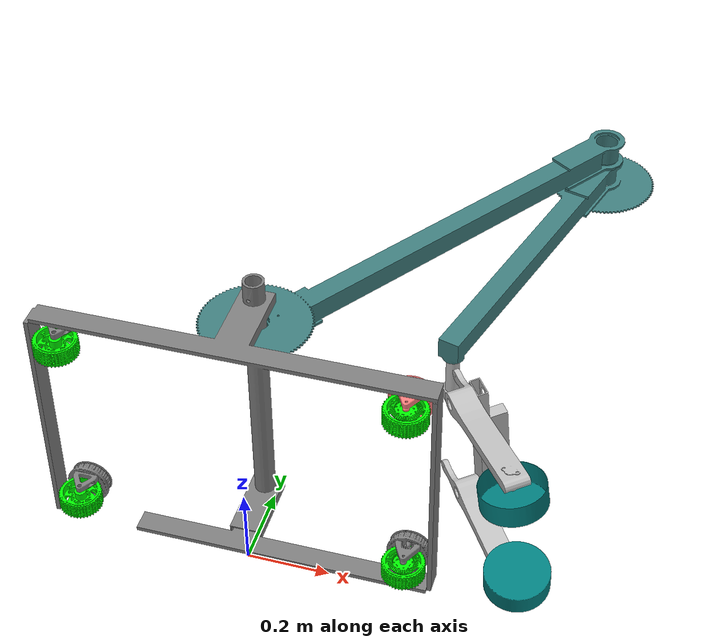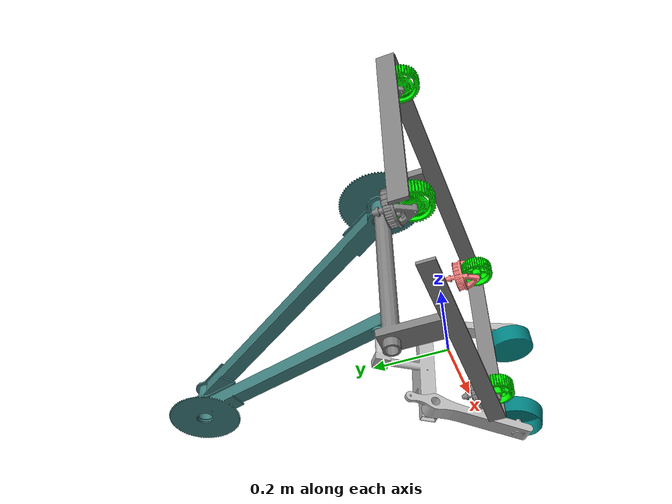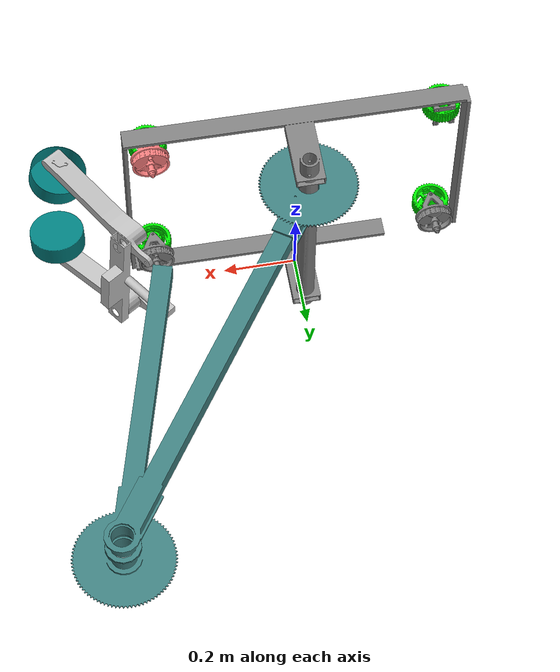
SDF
<?xml version="1.0" encoding="utf-8"?>
<sdf version="1.5">
  <model name="SimSwerveBot3">
    <pose>0 0 0.372289921204834 0 0 0</pose>

    <link name="Body">
      <gravity>1</gravity>
      <self_collide>0</self_collide>
      <pose>0.0103185969497103 0.0270555915724389 0.00229909099591104 0 0 0</pose>
      <must_be_base_link>1</must_be_base_link>
      <velocity_decay>
        <linear>0.0</linear>
        <angular>0.0</angular>
      </velocity_decay>
      <inertial>
        <mass>150</mass>
        <pose>0 0 0 0 0 0</pose>

      </inertial>
      <collision name="Body_collision">
        <pose>-0.466812853283889 -0.02705559157244 -0.00301802987182291 0 0 0</pose>
        <geometry>
          <mesh>
            <scale>1 1 1</scale>
            <uri>model://SimSwerveBot3/meshes/Body_col.STL</uri>
          </mesh>
        </geometry>
        <surface>
          <contact>
            <ode />
          </contact>
          <friction>
            <ode>
              <mu>1</mu>
              <mu2>1</mu2>
            </ode>
          </friction>
        </surface>
      </collision>
      <visual name="Body_visual">
        <pose>-0.466812853283889 -0.02705559157244 -0.00301802987182291 0 0 0</pose>
        <material>
          <ambient>0.501960784313725 0.501960784313725 0.501960784313725 1</ambient>
          <diffuse>0.501960784313725 0.501960784313725 0.501960784313725 1</diffuse>
        </material>
        <geometry>
          <mesh>
            <scale>1 1 1</scale>
            <uri>model://SimSwerveBot3/meshes/Body.STL</uri>
          </mesh>
        </geometry>
      </visual>
    </link>

    <link name="FRdrive">
      <gravity>1</gravity>
      <self_collide>0</self_collide>
      <pose>0.363496387518542 0.00308940755423762 0.210899192814309 0 0 0</pose>
      <must_be_base_link>0</must_be_base_link>
       <velocity_decay>
        <linear>0</linear>
        <angular>0.01</angular>
      </velocity_decay>
      <inertial>
        <mass>1</mass>
        <pose>0 0 0 0 0 0</pose>
      </inertial>
      <visual name="FRdrive_visual">
        <pose>-0.81999064385272 -0.00308940755423872 -0.211618131690221 0 0 0</pose>
        <material>
          <ambient>1 0.501960784313725 0.501960784313725 1</ambient>
          <diffuse>1 0.501960784313725 0.501960784313725 1</diffuse>
        </material>
        <geometry>
          <mesh>
            <scale>1 1 1</scale>
            <uri>model://SimSwerveBot3/meshes/FRdrive.STL</uri>
          </mesh>
        </geometry>
      </visual>
    </link>
    <joint name="Body-FRdrive" type="revolute">
      <parent>Body</parent>
      <child>FRdrive</child>
      <pose>0.0270286124814588 0 0.027225807185676 0 0 4.71238898038469</pose>
      <axis>
        <xyz>-1 0 0</xyz>
        <dynamics>
          <damping>1</damping>
          <friction>1</friction>
        </dynamics>
      </axis>
    </joint>
    <link name="FRwheel">
      <gravity>1</gravity>
      <self_collide>0</self_collide>
      <pose>0.390524894652224 -0.045440778296 0.239779131380291 0 0 0</pose>
      <must_be_base_link>0</must_be_base_link>
      <velocity_decay>
        <linear>0</linear>
        <angular>0.002</angular>
      </velocity_decay>
      <inertial>
        <mass>1</mass>
        <pose>0 0 0 0 0 0</pose>
      </inertial>
      <collision name="FRwheel_collision">
        <pose>-0.847019150986402 0.0454407782959989 -0.240498070256203 0 0 0</pose>
        <geometry>
          <mesh>
            <scale>1 1 1</scale>
            <uri>model://SimSwerveBot3/meshes/FRwheel_col.STL</uri>
          </mesh>
        </geometry>
        <surface>
          <contact>
             <ode>
              <max_vel>0.1</max_vel>
              <soft_cfm>0.8</soft_cfm>
              <soft_erp>0.8</soft_erp>
              <kd>25</kd>
              <kp>1e6</kp>
              <min_depth>0.0001</min_depth>
            </ode>
          </contact>
          <friction>
            <ode>
              <mu>1</mu>
              <mu2>1</mu2>
            </ode>
          </friction>
        </surface>
      </collision>
      <visual name="FRwheel_visual">
        <pose>-0.847019150986402 0.0454407782959989 -0.240498070256203 0 0 0</pose>
        <material>
          <ambient>0 1 0 1</ambient>
          <diffuse>0 1 0 1</diffuse>
        </material>
        <geometry>
          <mesh>
            <scale>1 1 1</scale>
            <uri>model://SimSwerveBot3/meshes/FRwheel.STL</uri>
          </mesh>
        </geometry>
      </visual>
    </link>
    <joint name="FRdrive-FRwheel" type="revolute">
      <parent>FRdrive</parent>
      <child>FRwheel</child>
      <pose>1.25638072463463E-05 0.00011429545755863 -9.46325306450113E-08 0 4.7199209919262 6.28318530717959</pose>
      <axis>
        <xyz>-1 0 0</xyz>
        <dynamics>
          <damping>1</damping>
          <friction>1</friction>
        </dynamics>
      </axis>
    </joint>
    <link name="FLdrive">
      <gravity>1</gravity>
      <self_collide>0</self_collide>
      <pose>0.390516175212258 -0.00398782218945136 -0.236504732283261 0 0 0</pose>
      <must_be_base_link>0</must_be_base_link>
      <velocity_decay>
        <linear>0</linear>
        <angular>0.01</angular>
      </velocity_decay>
      <inertial>
        <mass>1</mass>
        <pose>0 0 0 0 0 0</pose>
      </inertial>
      <visual name="FLdrive_visual">
        <pose>-0.847010431546437 0.00398782218945027 0.235785793407349 0 0 0</pose>
        <material>
          <ambient>0.501960784313725 0.501960784313725 0.501960784313725 1</ambient>
          <diffuse>0.501960784313725 0.501960784313725 0.501960784313725 1</diffuse>
        </material>
        <geometry>
          <mesh>
            <scale>1 1 1</scale>
            <uri>model://SimSwerveBot3/meshes/FLdrive.STL</uri>
          </mesh>
        </geometry>
      </visual>
    </link>
    <joint name="Body-FLdrive" type="revolute">
      <parent>Body</parent>
      <child>FLdrive</child>
      <pose>8.82478774166806E-06 5.20417042793042E-18 -0.00162026771675042 0 6.28318530717959 4.71238898038469</pose>
      <axis>
        <xyz>-1 0 0</xyz>
        <dynamics>
          <damping>1</damping>
          <friction>1</friction>
        </dynamics>
      </axis>
    </joint>
    <link name="FLwheel">
      <gravity>1</gravity>
      <self_collide>0</self_collide>
      <pose>0.390549941149665 -0.0454363391768118 -0.236470756117954 0 0 0</pose>
      <must_be_base_link>0</must_be_base_link>
      <velocity_decay>
        <linear>0</linear>
        <angular>0.002</angular>
      </velocity_decay>
      <inertial>
        <mass>0.123981363237525</mass>
        <pose>0 0 0 0 0 0</pose>
      </inertial>
      <collision name="FLwheel_collision">
        <pose>-0.847044197483843 0.0454363391768107 0.235751817242042 0 0 0</pose>
        <geometry>
          <mesh>
            <scale>1 1 1</scale>
            <uri>model://SimSwerveBot3/meshes/FLwheel_col.STL</uri>
          </mesh>
        </geometry>
        <surface>
          <contact>
             <ode>
              <max_vel>0.1</max_vel>
              <soft_cfm>0.8</soft_cfm>
              <soft_erp>0.8</soft_erp>
              <kd>25</kd>
              <kp>1e6</kp>
              <min_depth>0.001</min_depth>
            </ode>
          </contact>
          <friction>
            <ode>
              <mu>1</mu>
              <mu2>1</mu2>
            </ode>
          </friction>
        </surface>
      </collision>
      <visual name="FLwheel_visual">
        <pose>-0.847044197483843 0.0454363391768107 0.235751817242042 0 0 0</pose>
        <material>
          <ambient>0 1 0 1</ambient>
          <diffuse>0 1 0 1</diffuse>
        </material>
        <geometry>
          <mesh>
            <scale>1 1 1</scale>
            <uri>model://SimSwerveBot3/meshes/FLwheel.STL</uri>
          </mesh>
        </geometry>
      </visual>
    </link>
    <joint name="FLdrive-FLwheel" type="revolute">
      <parent>FLdrive</parent>
      <child>FLwheel</child>
      <pose>-3.39534051447821E-05 0.000109856338368929 -1.84997501873063E-07 0 4.71783749638594 5.39814581483388E-16</pose>
      <axis>
        <xyz>-1 0 0</xyz>
        <dynamics>
          <damping>1</damping>
          <friction>1</friction>
        </dynamics>
      </axis>
    </joint>
    <link name="BRdrive">
      <gravity>1</gravity>
      <self_collide>0</self_collide>
      <pose>-0.389820351374971 -0.0252568719347456 0.23794658223208 0 0 0</pose>
      <must_be_base_link>0</must_be_base_link>
      <velocity_decay>
        <linear>0</linear>
        <angular>0.01</angular>
      </velocity_decay>
      <inertial>
        <mass>1</mass>
        <pose>0 0 0 0 0 0</pose>
      </inertial>
      <visual name="BRdrive_visual">
        <pose>-0.0666739049592076 0.0252568719347445 -0.238665521107992 0 0 0</pose>
        <material>
          <ambient>0.501960784313725 0.501960784313725 0.501960784313725 1</ambient>
          <diffuse>0.501960784313725 0.501960784313725 0.501960784313725 1</diffuse>
        </material>
        <geometry>
          <mesh>
            <scale>1 1 1</scale>
            <uri>model://SimSwerveBot3/meshes/BRdrive.STL</uri>
          </mesh>
        </geometry>
      </visual>
    </link>
    <joint name="Body-BRdrive" type="revolute">
      <parent>Body</parent>
      <child>BRdrive</child>
      <pose>1.09504079234823E-06 0 0.000178417767905031 0 6.28318530717959 4.71238898038469</pose>
      <axis>
        <xyz>-1 0 0</xyz>
        <dynamics>
          <damping>1</damping>
          <friction>1</friction>
        </dynamics>
      </axis>
    </joint>
    <link name="BRwheel">
      <gravity>1</gravity>
      <self_collide>0</self_collide>
      <pose>-0.38981675512866 -0.0454407782968198 0.236470870684926 0 0 0</pose>
      <must_be_base_link>0</must_be_base_link>
      <velocity_decay>
        <linear>0</linear>
        <angular>0.002</angular>
      </velocity_decay>
      <inertial>
        <mass>1</mass>
        <pose>0 0 0 0 0 0</pose>
      </inertial>
      <collision name="BRwheel_collision">
        <pose>-0.066677501205518 0.0454407782968187 -0.237189809560838 0 0 0</pose>
        <geometry>
          <mesh>
            <scale>1 1 1</scale>
            <uri>model://SimSwerveBot3/meshes/BRwheel_col.STL</uri>
          </mesh>
        </geometry>
        <surface>
          <contact>
            <ode>
              <max_vel>0.1</max_vel>
              <soft_cfm>0.8</soft_cfm>
              <soft_erp>0.8</soft_erp>
              <kd>25</kd>
              <kp>1e6</kp>
              <min_depth>0.0001</min_depth>
            </ode>
          </contact>
          <friction>
            <ode>
              <mu>1</mu>
              <mu2>1</mu2>
            </ode>
          </friction>
        </surface>
      </collision>
      <visual name="BRwheel_visual">
        <pose>-0.066677501205518 0.0454407782968187 -0.237189809560838 0 0 0</pose>
        <material>
          <ambient>0 1 0 1</ambient>
          <diffuse>0 1 0 1</diffuse>
        </material>
        <geometry>
          <mesh>
            <scale>1 1 1</scale>
            <uri>model://SimSwerveBot3/meshes/BRwheel.STL</uri>
          </mesh>
        </geometry>
      </visual>
    </link>
    <joint name="BRdrive-BRwheel" type="revolute">
      <parent>BRdrive</parent>
      <child>BRwheel</child>
      <pose>-1.25639304105613E-05 0.000114295458376691 7.6434905293965E-08 0 1.56471272398399 3.14159265358979</pose>
      <axis>
        <xyz>1 0 0</xyz>
        <dynamics>
          <damping>1</damping>
          <friction>1</friction>
        </dynamics>
      </axis>
    </joint>
    <link name="BLdrive">
      <gravity>1</gravity>
      <self_collide>0</self_collide>
      <pose>-0.389831464443077 -0.00398782097182753 -0.239745247576255 0 0 0</pose>
      <must_be_base_link>0</must_be_base_link>
      <velocity_decay>
        <linear>0</linear>
        <angular>0.01</angular>
      </velocity_decay>
      <inertial>
        <mass>1</mass>
        <pose>0 0 0 0 0 0</pose>
      </inertial>
      <visual name="BLdrive_visual">
        <pose>-0.0666627918911016 0.00398782097182643 0.239026308700343 0 0 0</pose>
        <material>
          <ambient>0.501960784313725 0.501960784313725 0.501960784313725 1</ambient>
          <diffuse>0.501960784313725 0.501960784313725 0.501960784313725 1</diffuse>
        </material>
        <geometry>
          <mesh>
            <scale>1 1 1</scale>
            <uri>model://SimSwerveBot3/meshes/BLdrive.STL</uri>
          </mesh>
        </geometry>
      </visual>
    </link>
    <joint name="Body-BLdrive" type="revolute">
      <parent>Body</parent>
      <child>BLdrive</child>
      <pose>-1.25638072462075E-05 0.00011429545755838 9.46325307560336E-08 0 1.56326431525339 3.14159265358979</pose>
      <axis>
        <xyz>0 -1 0</xyz>
        <dynamics>
          <damping>1</damping>
          <friction>1</friction>
        </dynamics>
      </axis>
    </joint>
    <link name="BLwheel">
      <gravity>1</gravity>
      <self_collide>0</self_collide>
      <pose>-0.389819150986402 -0.045440778296001 -0.239779131380316 0 0 0</pose>
      <must_be_base_link>0</must_be_base_link>
      <velocity_decay>
        <linear>0</linear>
        <angular>0.002</angular>
      </velocity_decay>
      <inertial>
        <mass>0.123981366006227</mass>
        <pose>0 0 0 0 0 0</pose>
      </inertial>
      <collision name="BLwheel_collision">
        <pose>-0.0666751053477765 0.0454407782959999 0.239060192504404 0 0 0</pose>
        <geometry>
          <mesh>
            <scale>1 1 1</scale>
            <uri>model://SimSwerveBot3/meshes/BLwheel_col.STL</uri>
          </mesh>
        </geometry>
        <surface>
         <contact>
             <ode>
              <max_vel>0.1</max_vel>
              <soft_cfm>0.8</soft_cfm>
              <soft_erp>0.8</soft_erp>
              <kd>25</kd>
              <kp>1e6</kp>
              <min_depth>0.0001</min_depth>
            </ode>
          </contact>
          <friction>
            <ode>
              <mu>1</mu>
              <mu2>1</mu2>
            </ode>
          </friction>
        </surface>
      </collision>
      <visual name="BLwheel_visual">
        <pose>-0.0666751053477765 0.0454407782959999 0.239060192504404 0 0 0</pose>
        <material>
          <ambient>0 1 0 1</ambient>
          <diffuse>0 1 0 1</diffuse>
        </material>
        <geometry>
          <mesh>
            <scale>1 1 1</scale>
            <uri>model://SimSwerveBot3/meshes/BLwheel.STL</uri>
          </mesh>
        </geometry>
      </visual>
    </link>
    <joint name="BLdrive-BLwheel" type="revolute">
      <parent>BLdrive</parent>
      <child>BLwheel</child>
      <pose>-1.25638072462075E-05 0.00011429545755836 9.4632530728278E-08 0 1.56326431525339 3.14159265358979</pose>
      <axis>
        <xyz>1 0 0</xyz>
        <dynamics>
          <damping>1</damping>
          <friction>1</friction>
        </dynamics>
      </axis>
    </joint>

    <link name="LowerArm">
      <gravity>1</gravity>
      <self_collide>0</self_collide>
      <pose>0.286613438363416 0.569352514264946 0.201682058992877 0 0 0</pose>
      <must_be_base_link>0</must_be_base_link>
      <velocity_decay>
        <linear>0</linear>
        <angular>0.05</angular>
      </velocity_decay>
      <inertial>
        <mass>3.19006579837111</mass>
        <pose>0 0 0 0 0 0</pose>

      </inertial>
      <collision name="LowerArm_collision">
        <pose>-0.743107694697595 -0.569352514264947 -0.202400997868789 0 0 0</pose>
        <geometry>
          <mesh>
            <scale>1 1 1</scale>
            <uri>model://SimSwerveBot3/meshes/LowerArm_col.STL</uri>
          </mesh>
        </geometry>
        <surface>
          <contact>
            <ode />
          </contact>
          <friction>
            <ode>
              <mu>1</mu>
              <mu2>1</mu2>
            </ode>
          </friction>
        </surface>
      </collision>
      <visual name="LowerArm_visual">
        <pose>-0.743107694697595 -0.569352514264947 -0.202400997868789 0 0 0</pose>
        <material>
          <ambient>0.250980392156863 0.501960784313725 0.501960784313725 1</ambient>
          <diffuse>0.250980392156863 0.501960784313725 0.501960784313725 1</diffuse>
        </material>
        <geometry>
          <mesh>
            <scale>1 1 1</scale>
            <uri>model://SimSwerveBot3/meshes/LowerArm.STL</uri>
          </mesh>
        </geometry>
      </visual>
    </link>
    <joint name="Body-LowerArm" type="revolute">
      <parent>Body</parent>
      <child>LowerArm</child>
      <pose>-0.288320694697595 -0.423302514264947 0 0 1.5707963267949 0</pose>
      <axis>
        <xyz>-1 0 0</xyz>
        <dynamics>
          <damping>1</damping>
          <friction>2</friction>
        </dynamics>
      </axis>
    </joint>

    <link name="UpperArm">
      <gravity>1</gravity>
      <self_collide>0</self_collide>
      <pose>0.520807370409663 0.709767313781582 0.132747045366564 0 0 0</pose>
      <must_be_base_link>0</must_be_base_link>
      <velocity_decay>
        <linear>0</linear>
        <angular>0.05</angular>
      </velocity_decay>
      <inertial>
        <mass>2.3570164391411</mass>
        <pose>0 0 0 0 0 0</pose>

      </inertial>
      <collision name="UpperArm_collision">
        <pose>-0.977301626743842 -0.709767313781583 -0.133465984242475 0 0 0</pose>
        <geometry>
          <mesh>
            <scale>1 1 1</scale>
            <uri>model://SimSwerveBot3/meshes/UpperArm_col.STL</uri>
          </mesh>
        </geometry>
        <surface>
          <contact>
            <ode />
          </contact>
          <friction>
            <ode>
              <mu>1</mu>
              <mu2>1</mu2>
            </ode>
          </friction>
        </surface>
      </collision>
      <visual name="UpperArm_visual">
        <pose>-0.977301626743842 -0.709767313781583 -0.133465984242475 0 0 0</pose>
        <material>
          <ambient>0.250980392156863 0.501960784313725 0.501960784313725 1</ambient>
          <diffuse>0.250980392156863 0.501960784313725 0.501960784313725 1</diffuse>
        </material>
        <geometry>
          <mesh>
            <scale>1 1 1</scale>
            <uri>model://SimSwerveBot3/meshes/UpperArm.STL</uri>
          </mesh>
        </geometry>
      </visual>
    </link>
    <joint name="LowerArm-UpperArm" type="revolute">
      <parent>LowerArm</parent>
      <child>UpperArm</child>
      <pose>0.0949078106668886 0.34275847396224 0 0 4.71238898038469 0</pose>
      <axis>
        <xyz>1 0 0</xyz>
        <dynamics>
          <damping>1</damping>
          <friction>1</friction>
        </dynamics>

        <limit>
         <lower>-2.85</lower>
         <upper>2.85</upper>
        </limit>

      </axis>
    </joint>

   <!-- Gripper -->
    <link name="GripperRotate">
      <gravity>1</gravity>
      <self_collide>0</self_collide>
      <pose>0.410644632079937 0.304251355032236 0.0335850565029148 0 0 0</pose>
      <must_be_base_link>0</must_be_base_link>
      <velocity_decay>
        <linear>0</linear>
        <angular>0.01</angular>
      </velocity_decay>
      <inertial>
        <mass>0.1</mass>
        <pose>0 0 0 0 0 0</pose>
      </inertial>

      <collision name="GripperRotate_collision">
        <pose>-0.867138888414116 -0.304251355032237 -0.0343039953788267 0 0 0</pose>
        <geometry>
          <mesh>
            <scale>1 1 1</scale>
            <uri>model://SimSwerveBot3/meshes/GripperRotate_col.STL</uri>
          </mesh>
        </geometry>
        <surface>
          <contact>
            <ode />
          </contact>
          <friction>
            <ode>
              <mu>1</mu>
              <mu2>1</mu2>
            </ode>
          </friction>
        </surface>
      </collision>

      <visual name="GripperRotate_visual">
        <pose>-0.867138888414116 -0.304251355032237 -0.0343039953788267 0 0 0</pose>
        <material>
          <ambient>0.752941176470588 0.752941176470588 0.752941176470588 1</ambient>
          <diffuse>0.752941176470588 0.752941176470588 0.752941176470588 1</diffuse>
        </material>
        <geometry>
          <mesh>
            <scale>1 1 1</scale>
            <uri>model://SimSwerveBot3/meshes/GripperRotate.STL</uri>
          </mesh>
        </geometry>
      </visual>
    </link>

    <joint name="UpperArm-GripperRotate" type="revolute">
      <parent>UpperArm</parent>
      <child>GripperRotate</child>
        <pose>-0.001887 -0.000642 -0 3.14159 1.57079 3.14159</pose>
      <axis>
        <xyz>1 0 0</xyz>

        <dynamics>
          <damping>0</damping>
          <friction>0</friction>
        </dynamics>
        <limit>
          <upper>1.5</upper>
          <lower>-1.5</lower>
        </limit>

      </axis>
    </joint>

    <link name="GripperTwist">
      <gravity>1</gravity>
      <self_collide>0</self_collide>
      <pose>0.513843964560248 0.209879195510605 -0.0171770373937321 0 0 0</pose>
      <must_be_base_link>0</must_be_base_link>
      <velocity_decay>
        <linear>0</linear>
        <angular>0.1</angular>
      </velocity_decay>
      <inertial>
       <mass>0.01</mass>
        <pose>0 0 0 0 0 0</pose>
      </inertial>
      <collision name="GripperTwist_collision">
        <pose>-0.970338220894427 -0.209879195510606 0.0164580985178202 0 0 0</pose>
        <geometry>
          <mesh>
            <scale>1 1 1</scale>
            <uri>model://SimSwerveBot3/meshes/GripperTwist_col.STL</uri>
          </mesh>
        </geometry>
        <surface>
          <contact>
            <ode />
          </contact>
          <friction>
            <ode>
              <mu>1</mu>
              <mu2>1</mu2>
            </ode>
          </friction>
        </surface>
      </collision>

      <visual name="GripperTwist_visual">
        <pose>-0.970338220894427 -0.209879195510606 0.0164580985178202 0 0 0</pose>
        <material>
          <ambient>0.752941176470588 0.752941176470588 0.752941176470588 1</ambient>
          <diffuse>0.752941176470588 0.752941176470588 0.752941176470588 1</diffuse>
        </material>
        <geometry>
          <mesh>
            <scale>1 1 1</scale>
            <uri>model://SimSwerveBot3/meshes/GripperTwist.STL</uri>
          </mesh>
        </geometry>
      </visual>

      <sensor name="GripperTwistCamera" type="camera">
        <visualize>1</visualize>
        <always_on>1</always_on>
        <pose>0.027422507856745 -0.00627316013977647 0.00272223138191047 -1.57 0.0 -1.0</pose>

        <camera name="GripperTwistcamera">
          <horizontal_fov>1.5707963267949</horizontal_fov>
          <image>
             <width>640</width>
            <height>480</height>
          </image>
          <clip>
            <near>0.1</near>
            <far>100</far>
          </clip>
        </camera>
        <plugin name="camera1" filename="sim_camera.dll">
          <topic>~/gazebo/frc/simulator/camera/0</topic>
          <port>9000</port>
          <fps>20</fps>
          <enabled>true</enabled>
          <savepath>tmp</savepath>
          <maxframes>1</maxframes>
        </plugin>
      </sensor>
    </link>

    <joint name="GripperRotate-GripperTwist" type="revolute">
      <parent>GripperRotate</parent>
      <child>GripperTwist</child>
      <pose>-0.020871891120782 -0.0149869750218195 0.00672065135518525 0 0 0</pose>
      <axis>
       <xyz>-0.8122 1.0 0</xyz>
       <dynamics>
          <damping>0.1</damping>
          <friction>0.1</friction>
        </dynamics>
        <limit>
          <upper>3.14</upper>
          <lower>-3.14</lower>
        </limit>
      </axis>
    </joint>

    <link name="LeftGripper">
      <gravity>1</gravity>
      <self_collide>0</self_collide>
      <pose>0.557320667154498 0.0719869069981106 -0.193435240872313 0 0 0</pose>
      <must_be_base_link>0</must_be_base_link>
      <velocity_decay>
        <linear>0</linear>
        <angular>0.01</angular>
      </velocity_decay>
      <inertial>
        <mass>0.01</mass>
        <pose>0 0 0 0 0 0</pose>

      </inertial>
      <collision name="LeftGripper_collision">
        <pose>-1.01381492348868 -0.0719869069981117 0.192716301996401 0 0 0</pose>
        <geometry>
          <mesh>
            <scale>1 1 1</scale>
            <uri>model://SimSwerveBot3/meshes/LeftGripper_col.STL</uri>
          </mesh>
        </geometry>
        <surface>
          <contact>
            <ode />
          </contact>
          <friction>
            <ode>
              <mu>0</mu>
              <mu2>0</mu2>
            </ode>
          </friction>
        </surface>
      </collision>
      <visual name="LeftGripper_visual">
        <pose>-1.01381492348868 -0.0719869069981117 0.192716301996401 0 0 0</pose>
        <material>
          <ambient>0.752941176470588 0.752941176470588 0.752941176470588 1</ambient>
          <diffuse>0.752941176470588 0.752941176470588 0.752941176470588 1</diffuse>
        </material>
        <geometry>
          <mesh>
            <scale>1 1 1</scale>
            <uri>model://SimSwerveBot3/meshes/LeftGripper.STL</uri>
          </mesh>
        </geometry>
      </visual>
    </link>
    <joint name="GripperTwist-LeftGripper" type="revolute">
      <parent>GripperTwist</parent>
      <child>LeftGripper</child>
      <pose>-0.0728289790912465 0.0982768539036823 0.0192775555177667 0 0.0950125221191799 4.55042876026699</pose>
      <axis>
        <xyz>-0.6 0.6 0</xyz>
        <dynamics>
          <damping>0.0</damping>
          <friction>0.0</friction>
        </dynamics>
         <limit>
          <upper>0.1</upper>
          <lower>-0.2</lower>
        </limit>
      </axis>
    </joint>

    <link name="RightGripper">
      <gravity>1</gravity>
      <self_collide>0</self_collide>
      <pose>0.535309594713599 0.0523854190468442 0.133776452201924 0 0 0</pose>
      <must_be_base_link>0</must_be_base_link>
      <velocity_decay>
        <linear>0</linear>
        <angular>0.01</angular>
      </velocity_decay>
      <inertial>
        <mass>0.01</mass>
        <pose>0 0 0 0 0 0</pose>

      </inertial>
      <collision name="RightGripper_collision">
        <pose>-0.991803851047778 -0.0523854190468453 -0.134495391077836 0 0 0</pose>
        <geometry>
          <mesh>
            <scale>1 1 1</scale>
            <uri>model://SimSwerveBot3/meshes/RightGripper_col.STL</uri>
          </mesh>
        </geometry>
        <surface>
          <contact>
            <ode />
          </contact>
          <friction>
            <ode>
              <mu>0</mu>
              <mu2>0</mu2>
            </ode>
          </friction>
        </surface>
      </collision>
      <visual name="RightGripper_visual">
        <pose>-0.991803851047778 -0.0523854190468453 -0.134495391077836 0 0 0</pose>
        <material>
          <ambient>0.752941176470588 0.752941176470588 0.752941176470588 1</ambient>
          <diffuse>0.752941176470588 0.752941176470588 0.752941176470588 1</diffuse>
        </material>
        <geometry>
          <mesh>
            <scale>1 1 1</scale>
            <uri>model://SimSwerveBot3/meshes/RightGripper.STL</uri>
          </mesh>
        </geometry>
      </visual>
    </link>
    <joint name="GripperTwist-RightGripper" type="revolute">
      <parent>GripperTwist</parent>
      <child>RightGripper</child>
      <pose>-0.0702210082292961 0.100570244506764 -0.0169877012766035 0 0.0950125221191799 4.55042876026699</pose>
      <axis>
        <xyz>0.6 -0.6 0</xyz>
        <dynamics>
          <damping>0.0</damping>
          <friction>0.0</friction>
        </dynamics>
        <limit>
          <upper>0.1</upper>
          <lower>-0.2</lower>
        </limit>

      </axis>
    </joint>

    <link name="LeftPad">
      <gravity>1</gravity>
      <self_collide>0</self_collide>
      <pose>0.65045406809633 -0.061857243117229 -0.158044572202814 0 0 0</pose>
      <must_be_base_link>0</must_be_base_link>
      <velocity_decay>
        <linear>0</linear>
        <angular>0</angular>
      </velocity_decay>
      <inertial>
        <mass>0.01</mass>
        <pose>0 0 0 0 0 0</pose>

      </inertial>
      <collision name="LeftPad_collision">
        <pose>-1.10694832443051 0.0618572431172279 0.157325633326903 0 0 0</pose>
        <geometry>
          <mesh>
            <scale>1 1 1</scale>
            <uri>model://SimSwerveBot3/meshes/LeftPad_col.STL</uri>
          </mesh>
        </geometry>
        <surface>
          <friction>
            <ode>
              <mu>1</mu>
              <mu2>1</mu2>
            </ode>
          </friction>
        </surface>
      </collision>
      <visual name="LeftPad_visual">
        <pose>-1.10694832443051 0.0618572431172279 0.157325633326903 0 0 0</pose>
        <material>
          <ambient>0 0.501960784313725 0.501960784313725 1</ambient>
          <diffuse>0 0.501960784313725 0.501960784313725 1</diffuse>
        </material>
        <geometry>
          <mesh>
            <scale>1 1 1</scale>
            <uri>model://SimSwerveBot3/meshes/LeftPad.STL</uri>
          </mesh>
        </geometry>
      </visual>
    </link>
    <joint name="LeftGripper-LeftPad" type="revolute">
      <parent>LeftGripper</parent>
      <child>LeftPad</child>
      <pose>-4.9427129056312E-13 2.73212008572443E-13 5.72319969194268E-14 0 4.8944800425346 6.10164737499982</pose>
      <axis>
        <xyz>0.975649643624355 -0.174982960358412 0.132244986596373</xyz>
        <dynamics>
          <damping>0</damping>
          <friction>0</friction>
        </dynamics>

      </axis>
    </joint>
    <link name="RightPad">
      <gravity>1</gravity>
      <self_collide>0</self_collide>
      <pose>0.632231615928298 -0.0778836267017213 0.0953488079418481 0 0 0</pose>
      <must_be_base_link>0</must_be_base_link>
      <velocity_decay>
        <linear>0</linear>
        <angular>0</angular>
      </velocity_decay>
      <inertial>
        <mass>0.01</mass>
        <pose>0 0 0 0 0 0</pose>
      </inertial>
      <collision name="RightPad_collision">
        <pose>-1.08872587226248 0.0778836267017202 -0.0960677468177599 0 0 0</pose>
        <geometry>
          <mesh>
            <scale>1 1 1</scale>
            <uri>model://SimSwerveBot3/meshes/RightPad_col.STL</uri>
          </mesh>
        </geometry>
        <surface>
          <friction>
            <ode>
              <mu>1</mu>
              <mu2>1</mu2>
            </ode>
          </friction>
        </surface>
      </collision>
      <visual name="RightPad_visual">
        <pose>-1.08872587226248 0.0778836267017202 -0.0960677468177599 0 0 0</pose>
        <material>
          <ambient>0 0.501960784313725 0.501960784313725 1</ambient>
          <diffuse>0 0.501960784313725 0.501960784313725 1</diffuse>
        </material>
        <geometry>
          <mesh>
            <scale>1 1 1</scale>
            <uri>model://SimSwerveBot3/meshes/RightPad.STL</uri>
          </mesh>
        </geometry>
      </visual>
    </link>
    <joint name="RightGripper-RightPad" type="revolute">
      <parent>RightGripper</parent>
      <child>RightPad</child>
      <pose>5.08260100673397E-13 9.14296416354432E-13 2.84910983694431E-14 0 1.40438960444019 3.19826400892906</pose>
      <axis>
        <xyz>0.94730578747141 0.0646892133902353 -0.313730857095894</xyz>
        <dynamics>
          <damping>0</damping>
          <friction>0</friction>
        </dynamics>

      </axis>
    </joint>
    <plugin name="clock" filename="sim_clock.dll">
      <topic>~/gazebo/frc/simulator/clock</topic>
    </plugin>

    <plugin name="Body_gyro" filename="sim_gyro.dll">
      <link>Body</link>
      <topic>~/gazebo/frc/simulator/gyro/0</topic>
      <units>degrees</units>
      <axis>yaw</axis>
    </plugin>

    <plugin name="Frame-FL-drive_motor" filename="sim_motor.dll">
      <joint>FLdrive-FLwheel</joint>
      <topic>~/gazebo/frc/simulator/motor/1</topic>
      <multiplier>25</multiplier>
    </plugin>
    <plugin name="Frame-FL-drive_encoder" filename="sim_encoder.dll">
        <joint>FLdrive-FLwheel</joint>
        <topic>~/gazebo/frc/simulator/encoder/1</topic>
        <multiplier>1</multiplier>
    </plugin>
    <plugin name="Frame-FL-turn_motor" filename="sim_motor.dll">
        <joint>Body-FLdrive</joint>
        <topic>~/gazebo/frc/simulator/motor/2</topic>
        <multiplier>25</multiplier>
    </plugin>
      <plugin name="Frame-FL-turn_encoder" filename="sim_encoder.dll">
      <joint>Body-FLdrive</joint>
       <topic>~/gazebo/frc/simulator/encoder/2</topic>
      <multiplier>1</multiplier>
    </plugin>

    <plugin name="Frame-FR-drive_motor" filename="sim_motor.dll">
        <joint>FRdrive-FRwheel</joint>
        <topic>~/gazebo/frc/simulator/motor/3</topic>
        <multiplier>25</multiplier>
    </plugin>
    <plugin name="Frame-FR-drive_encoder" filename="sim_encoder.dll">
        <joint>FRdrive-FRwheel</joint>
        <topic>~/gazebo/frc/simulator/encoder/3</topic>
        <multiplier>1</multiplier>
    </plugin>
    <plugin name="Frame-FR-turn_motor" filename="sim_motor.dll">
        <joint>Body-FRdrive</joint>
        <topic>~/gazebo/frc/simulator/motor/4</topic>
        <multiplier>25</multiplier>
    </plugin>
    <plugin name="Frame-FR-turn_encoder" filename="sim_encoder.dll">
      <joint>Body-FRdrive</joint>
       <topic>~/gazebo/frc/simulator/encoder/4</topic>
      <multiplier>1</multiplier>
    </plugin>

    <plugin name="Frame-BL-drive_motor" filename="sim_motor.dll">
        <joint>BLdrive-BLwheel</joint>
        <topic>~/gazebo/frc/simulator/motor/5</topic>
        <multiplier>25</multiplier>
    </plugin>
    <plugin name="Frame-BL-drive_encoder" filename="sim_encoder.dll">
        <joint>BLdrive-BLwheel</joint>
        <topic>~/gazebo/frc/simulator/encoder/5</topic>
        <multiplier>1</multiplier>
    </plugin>
    <plugin name="Frame-BL-turn_motor" filename="sim_motor.dll">
        <joint>Body-BLdrive</joint>
        <topic>~/gazebo/frc/simulator/motor/6</topic>
        <multiplier>25</multiplier>
    </plugin>
    <plugin name="Frame-BL-turn_encoder" filename="sim_encoder.dll">
        <joint>Body-BLdrive</joint>
        <topic>~/gazebo/frc/simulator/encoder/6</topic>
        <multiplier>1</multiplier>
    </plugin>

    <plugin name="Frame-BR-drive_motor" filename="sim_motor.dll">
        <joint>BRdrive-BRwheel</joint>
        <topic>~/gazebo/frc/simulator/motor/7</topic>
        <multiplier>25</multiplier>
    </plugin>
      <plugin name="Frame-BR-drive_encoder" filename="sim_encoder.dll">
        <joint>BRdrive-BRwheel</joint>
        <topic>~/gazebo/frc/simulator/encoder/7</topic>
        <multiplier>1</multiplier>
    </plugin>
    <plugin name="Frame-BR-turn_motor" filename="sim_motor.dll">
        <joint>Body-BRdrive</joint>
        <topic>~/gazebo/frc/simulator/motor/8</topic>
        <multiplier>25</multiplier>
    </plugin>
    <plugin name="Frame-BR-turn_encoder" filename="sim_encoder.dll">
        <joint>Body-BRdrive</joint>
        <topic>~/gazebo/frc/simulator/encoder/8</topic>
        <multiplier>1</multiplier>
    </plugin>

    <plugin name="Frame-lower-arm_motor" filename="sim_motor.dll">
        <joint>Body-LowerArm</joint>
        <topic>~/gazebo/frc/simulator/motor/9</topic>
        <multiplier>50</multiplier>
    </plugin>
    <plugin name="Frame-lower-arm_encoder" filename="sim_encoder.dll">
        <joint>Body-LowerArm</joint>
        <topic>~/gazebo/frc/simulator/encoder/9</topic>
        <multiplier>1</multiplier>
    </plugin>

    <plugin name="LowerArm-UpperArm_motor" filename="sim_motor.dll">
        <joint>LowerArm-UpperArm</joint>
        <topic>~/gazebo/frc/simulator/motor/10</topic>
        <multiplier>50</multiplier>
    </plugin>
    <plugin name="LowerArm-UpperArm_encoder" filename="sim_encoder.dll">
        <joint>LowerArm-UpperArm</joint>
        <topic>~/gazebo/frc/simulator/encoder/10</topic>
        <multiplier>1</multiplier>
    </plugin>

    <plugin name="UpperArm-Wrist_motor" filename="sim_motor.dll">
        <joint>UpperArm-GripperRotate</joint>
        <topic>~/gazebo/frc/simulator/motor/11</topic>
        <multiplier>40</multiplier>
    </plugin>
    <plugin name="UpperArm-Wrist_encoder" filename="sim_encoder.dll">
        <joint>UpperArm-GripperRotate</joint>
        <topic>~/gazebo/frc/simulator/encoder/11</topic>
        <multiplier>1</multiplier>
    </plugin>

    <plugin name="GripperRotate-GripperTwist_motor" filename="sim_motor.dll">
        <joint>GripperRotate-GripperTwist</joint>
        <topic>~/gazebo/frc/simulator/motor/12</topic>
        <multiplier>20</multiplier>
    </plugin>
    <plugin name="GripperRotate-GripperTwist_encoder" filename="sim_encoder.dll">
        <joint>GripperRotate-GripperTwist</joint>
        <topic>~/gazebo/frc/simulator/encoder/12</topic>
        <multiplier>1</multiplier>
    </plugin>

    <plugin name="GripperTwist-LeftGripper" filename="sim_piston.dll">
        <joint>GripperTwist-LeftGripper</joint>
        <topic>~/gazebo/frc/simulator/piston/0</topic>
        <forward-force>20</forward-force>
        <reverse-force>20</reverse-force>
    </plugin>

     <plugin name="GripperTwist-RightGripper" filename="sim_piston.dll">
        <joint>GripperTwist-RightGripper</joint>
        <topic>~/gazebo/frc/simulator/piston/0</topic>
        <forward-force>20</forward-force>
        <reverse-force>20</reverse-force>
      </plugin>

  </model>
</sdf>
